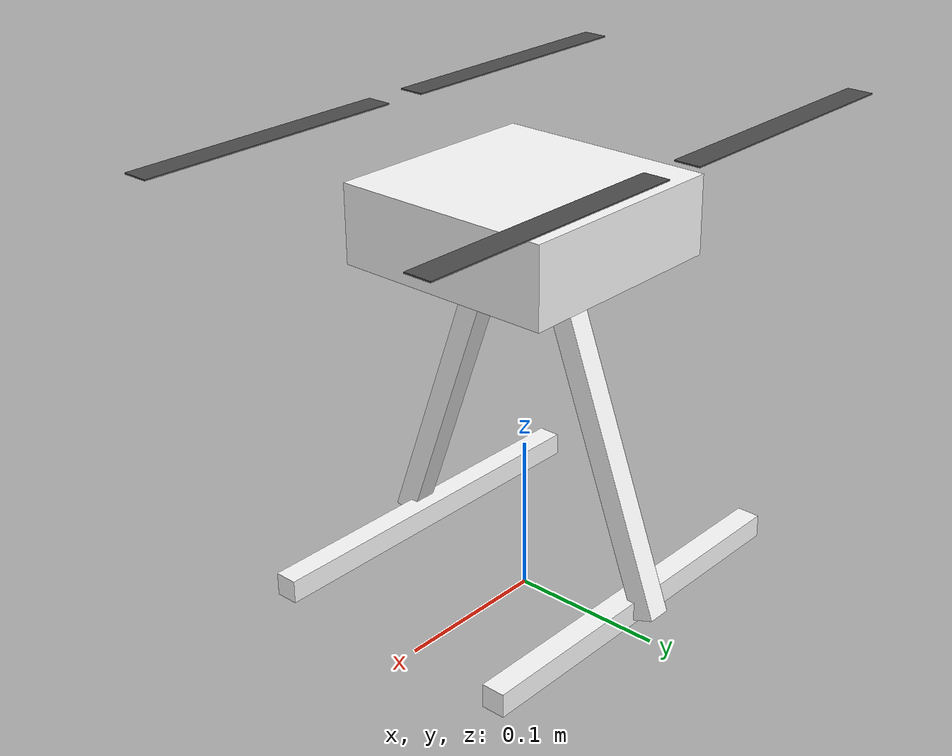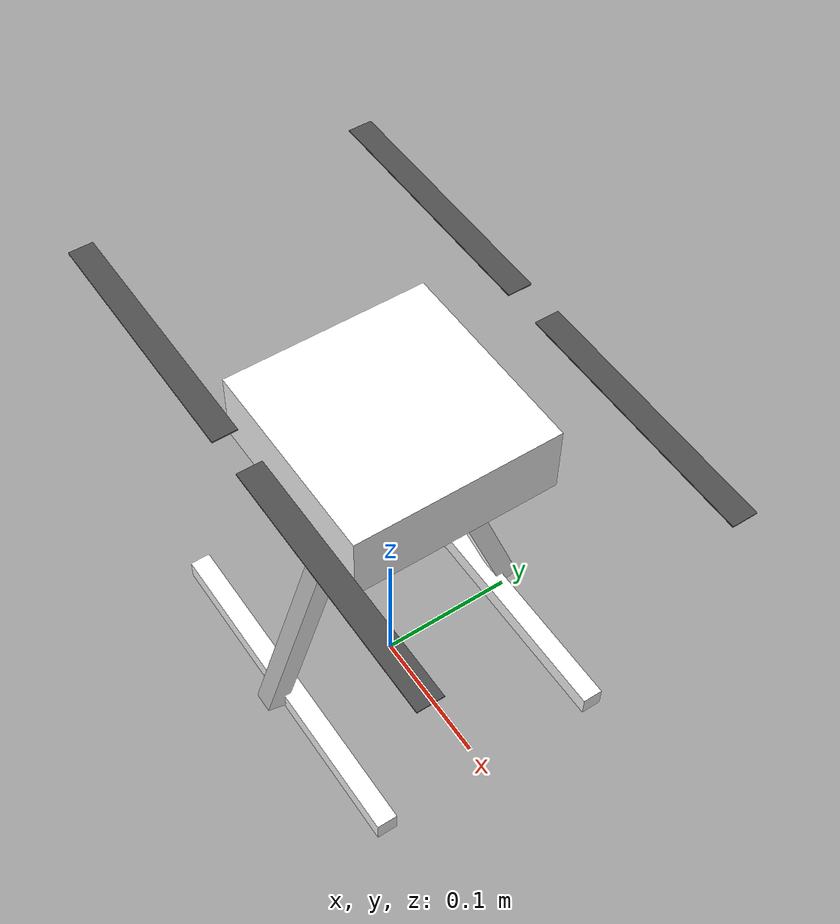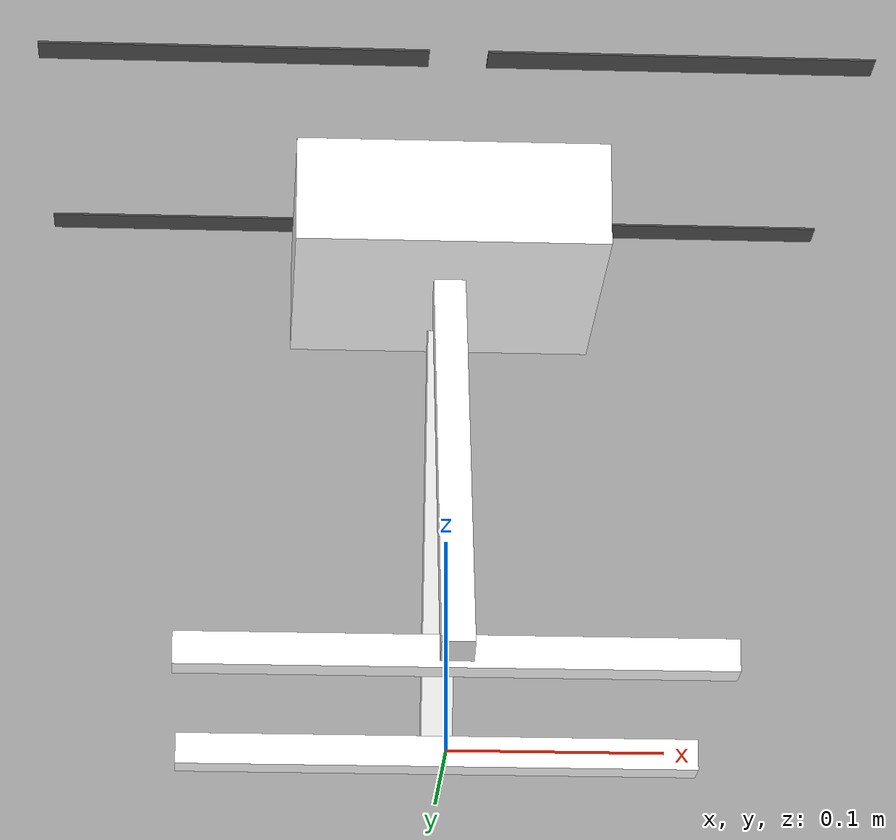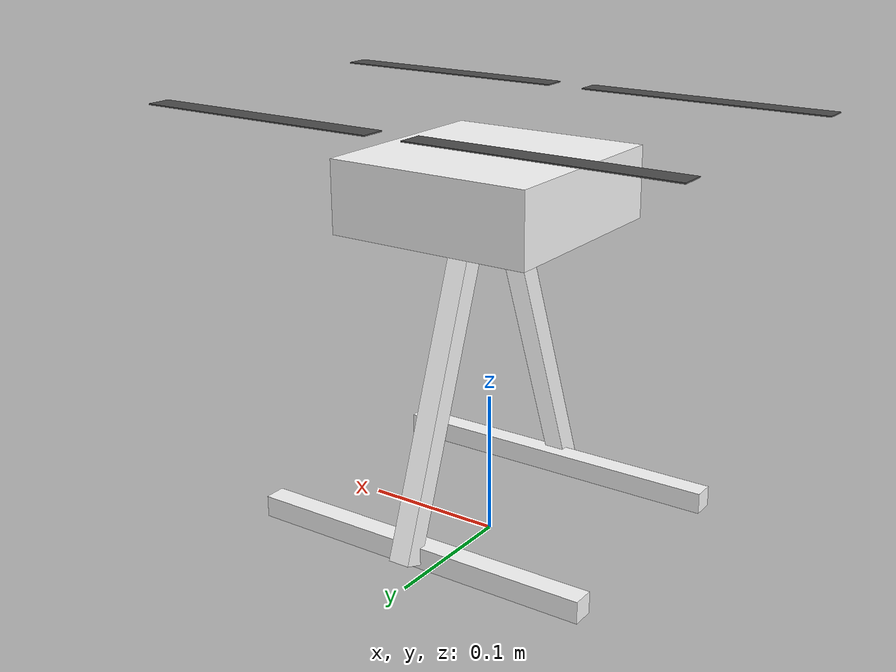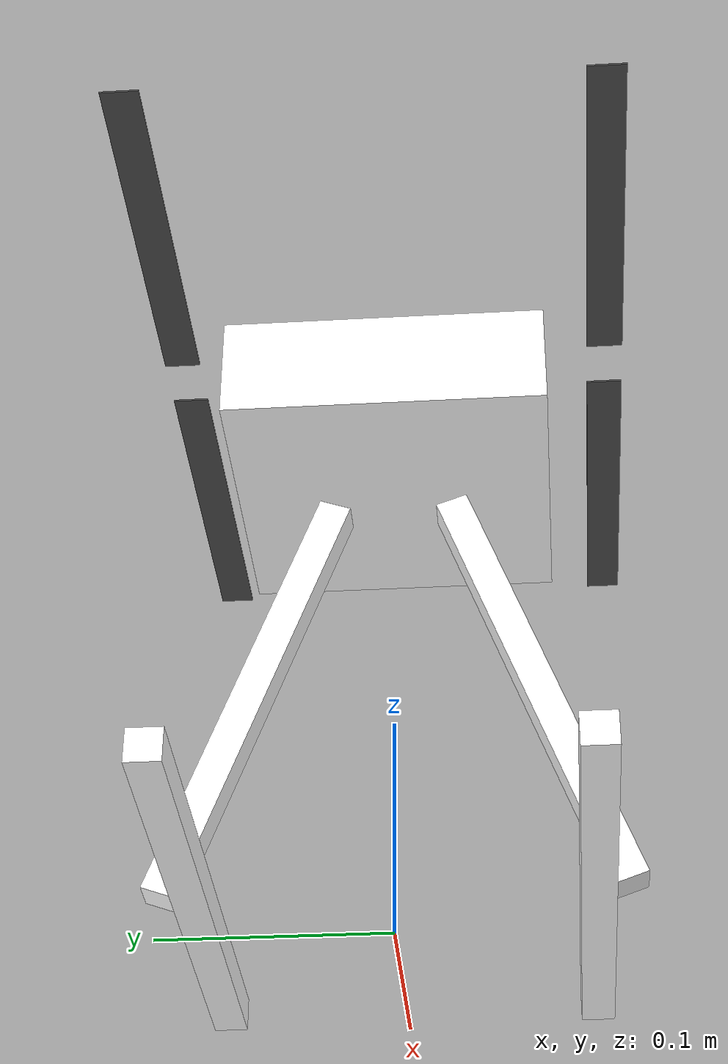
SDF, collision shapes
<?xml version="1.0" encoding="UTF-8"?>
<sdf version='1.9'>
  <model name='x290'>
    <include merge='true'>
      <uri>model://x290_base</uri>
    </include>
    <plugin filename="gz-sim-multicopter-motor-model-system"
      name="gz::sim::systems::MulticopterMotorModel">
      <jointName>rotor_0_joint</jointName>
      <linkName>rotor_0</linkName>
      <turningDirection>ccw</turningDirection>
      <timeConstantUp>0.0125</timeConstantUp>
      <timeConstantDown>0.025</timeConstantDown>
      <maxRotVelocity>1000.0</maxRotVelocity>
      <motorConstant>8.54858e-06</motorConstant>
      <momentConstant>0.016</momentConstant>
      <commandSubTopic>command/motor_speed</commandSubTopic>
      <motorNumber>0</motorNumber>
      <rotorDragCoefficient>8.06428e-05</rotorDragCoefficient>
      <rollingMomentCoefficient>1e-06</rollingMomentCoefficient>
      <rotorVelocitySlowdownSim>10</rotorVelocitySlowdownSim>
      <motorType>velocity</motorType>
    </plugin>
    <plugin filename="gz-sim-multicopter-motor-model-system"
      name="gz::sim::systems::MulticopterMotorModel">
      <jointName>rotor_1_joint</jointName>
      <linkName>rotor_1</linkName>
      <turningDirection>ccw</turningDirection>
      <timeConstantUp>0.0125</timeConstantUp>
      <timeConstantDown>0.025</timeConstantDown>
      <maxRotVelocity>1000.0</maxRotVelocity>
      <motorConstant>8.54858e-06</motorConstant>
      <momentConstant>0.016</momentConstant>
      <commandSubTopic>command/motor_speed</commandSubTopic>
      <motorNumber>1</motorNumber>
      <rotorDragCoefficient>8.06428e-05</rotorDragCoefficient>
      <rollingMomentCoefficient>1e-06</rollingMomentCoefficient>
      <rotorVelocitySlowdownSim>10</rotorVelocitySlowdownSim>
      <motorType>velocity</motorType>
    </plugin>
    <plugin filename="gz-sim-multicopter-motor-model-system"
      name="gz::sim::systems::MulticopterMotorModel">
      <jointName>rotor_2_joint</jointName>
      <linkName>rotor_2</linkName>
      <turningDirection>cw</turningDirection>
      <timeConstantUp>0.0125</timeConstantUp>
      <timeConstantDown>0.025</timeConstantDown>
      <maxRotVelocity>1000.0</maxRotVelocity>
      <motorConstant>8.54858e-06</motorConstant>
      <momentConstant>0.016</momentConstant>
      <commandSubTopic>command/motor_speed</commandSubTopic>
      <motorNumber>2</motorNumber>
      <rotorDragCoefficient>8.06428e-05</rotorDragCoefficient>
      <rollingMomentCoefficient>1e-06</rollingMomentCoefficient>
      <rotorVelocitySlowdownSim>10</rotorVelocitySlowdownSim>
      <motorType>velocity</motorType>
    </plugin>
    <plugin filename="gz-sim-multicopter-motor-model-system"
      name="gz::sim::systems::MulticopterMotorModel">
      <jointName>rotor_3_joint</jointName>
      <linkName>rotor_3</linkName>
      <turningDirection>cw</turningDirection>
      <timeConstantUp>0.0125</timeConstantUp>
      <timeConstantDown>0.025</timeConstantDown>
      <maxRotVelocity>1000.0</maxRotVelocity>
      <motorConstant>8.54858e-06</motorConstant>
      <momentConstant>0.016</momentConstant>
      <commandSubTopic>command/motor_speed</commandSubTopic>
      <motorNumber>3</motorNumber>
      <rotorDragCoefficient>8.06428e-05</rotorDragCoefficient>
      <rollingMomentCoefficient>1e-06</rollingMomentCoefficient>
      <rotorVelocitySlowdownSim>10</rotorVelocitySlowdownSim>
      <motorType>velocity</motorType>
    </plugin>
  </model>
</sdf>

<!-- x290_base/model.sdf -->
<sdf version='1.9'>
  <model name='x290_base'>
    <pose>0 0 .24 0 0 0</pose>
    <self_collide>false</self_collide>
    <static>false</static>
    <link name="base_link">
      <inertial>
        <mass>2.0</mass>
        <inertia>
          <ixx>0.02166666666666667</ixx>
          <ixy>0</ixy>
          <ixz>0</ixz>
          <iyy>0.02166666666666667</iyy>
          <iyz>0</iyz>
          <izz>0.04000000000000001</izz>
        </inertia>
      </inertial>
      <gravity>true</gravity>
      <velocity_decay />
      <visual name="base_link_visual">
        <pose>0 0 .025 0 0 3.141592654</pose>
        <geometry>
          <mesh>
            <scale>0.58 0.58 0.58</scale>
            <uri>model://x500_base/meshes/NXP-HGD-CF.dae</uri>
          </mesh>
        </geometry>
      </visual>
      <visual name="5010_motor_base_0">
        <pose>0.1025 0.1025 .032 0 0 -.45</pose>
        <geometry>
          <mesh>
            <scale>1 1 1</scale>
            <uri>model://x500_base/meshes/5010Base.dae</uri>
          </mesh>
        </geometry>
      </visual>
      <visual name="5010_motor_base_1">
        <pose>-0.1025 0.1025 .032 0 0 -.45</pose>
        <geometry>
          <mesh>
            <scale>1 1 1</scale>
            <uri>model://x500_base/meshes/5010Base.dae</uri>
          </mesh>
        </geometry>
      </visual>
      <visual name="5010_motor_base_2">
        <pose>0.1025 -0.1025 .032 0 0 -.45</pose>
        <geometry>
          <mesh>
            <scale>1 1 1</scale>
            <uri>model://x500_base/meshes/5010Base.dae</uri>
          </mesh>
        </geometry>
      </visual>
      <visual name="5010_motor_base_3">
        <pose>-0.1025 -0.1025 .032 0 0 -.45</pose>
        <geometry>
          <mesh>
            <scale>1 1 1</scale>
            <uri>model://x500_base/meshes/5010Base.dae</uri>
          </mesh>
        </geometry>
      </visual>
      <visual name="NXP_FMUK66_FRONT">
        <pose>0.047 .001 .043 1 0 1.57</pose>
        <cast_shadows>false</cast_shadows>
        <geometry>
          <plane>
            <normal>0 0 1</normal>
            <size>.013 .007</size>
          </plane>
        </geometry>
        <material>
          <diffuse>1.0 1.0 1.0</diffuse>
          <specular>1.0 1.0 1.0</specular>
          <pbr>
            <metal>
              <albedo_map>model://x500_base/materials/textures/nxp.png</albedo_map>
            </metal>
          </pbr>
        </material>
      </visual>
      <visual name="NXP_FMUK66_TOP">
        <pose>-0.023 0 .0515 0 0 -1.57</pose>
        <cast_shadows>false</cast_shadows>
        <geometry>
          <plane>
            <normal>0 0 1</normal>
            <size>.013 .007</size>
          </plane>
        </geometry>
        <material>
          <diffuse>1.0 1.0 1.0</diffuse>
          <specular>1.0 1.0 1.0</specular>
          <pbr>
            <metal>
              <albedo_map>model://x500_base/materials/textures/nxp.png</albedo_map>
            </metal>
          </pbr>
        </material>
      </visual>
      <visual name="RDDRONE_FMUK66_TOP">
        <pose>-.03 0 .0515 0 0 -1.57</pose>
        <cast_shadows>false</cast_shadows>
        <geometry>
          <plane>
            <normal>0 0 1</normal>
            <size>.032 .0034</size>
          </plane>
        </geometry>
        <material>
          <diffuse>1.0 1.0 1.0</diffuse>
          <specular>1.0 1.0 1.0</specular>
          <pbr>
            <metal>
              <albedo_map>model://x500_base/materials/textures/rd.png</albedo_map>
            </metal>
          </pbr>
        </material>
      </visual>
      <collision name="base_link_collision_0">
        <pose>0 0 .007 0 0 0</pose>
        <geometry>
          <box>
            <size>0.1456 0.1456 0.05</size>
          </box>
        </geometry>
        <surface>
          <contact>
            <ode>
              <min_depth>0.001</min_depth>
              <max_vel>0</max_vel>
            </ode>
          </contact>
          <friction>
            <ode />
          </friction>
        </surface>
      </collision>
      <collision name="base_link_collision_1">
        <pose>0 -0.063 -.123 -0.35 0 0</pose>
        <geometry>
          <box>
            <size>0.015 0.015 0.21</size>
          </box>
        </geometry>
        <surface>
          <contact>
            <ode>
              <min_depth>0.001</min_depth>
              <max_vel>0</max_vel>
            </ode>
          </contact>
          <friction>
            <ode />
          </friction>
        </surface>
      </collision>
      <collision name="base_link_collision_2">
        <pose>0 0.063 -.123 0.35 0 0</pose>
        <geometry>
          <box>
            <size>0.015 0.015 0.21</size>
          </box>
        </geometry>
        <surface>
          <contact>
            <ode>
              <min_depth>0.001</min_depth>
              <max_vel>0</max_vel>
            </ode>
          </contact>
          <friction>
            <ode />
          </friction>
        </surface>
      </collision>
      <collision name="base_link_collision_3">
        <pose>0 -0.085 -.2195 0 0 0</pose>
        <geometry>
          <box>
            <size>0.25 0.015 0.015</size>
          </box>
        </geometry>
        <surface>
          <contact>
            <ode>
              <min_depth>0.001</min_depth>
              <max_vel>0</max_vel>
            </ode>
          </contact>
          <friction>
            <ode />
          </friction>
        </surface>
      </collision>
      <collision name="base_link_collision_4">
        <pose>0 0.085 -.2195 0 0 0</pose>
        <geometry>
          <box>
            <size>0.25 0.015 0.015</size>
          </box>
        </geometry>
        <surface>
          <contact>
            <ode>
              <min_depth>0.001</min_depth>
              <max_vel>0</max_vel>
            </ode>
          </contact>
          <friction>
            <ode />
          </friction>
        </surface>
      </collision>
      <sensor name="air_pressure_sensor" type="air_pressure">
        <gz_frame_id>base_link</gz_frame_id>
        <always_on>1</always_on>
        <update_rate>50</update_rate>
        <air_pressure>
          <pressure>
            <noise type="gaussian">
              <mean>0</mean>
              <stddev>3</stddev>
            </noise>
          </pressure>
        </air_pressure>
      </sensor>
      <sensor name="magnetometer_sensor" type="magnetometer">
        <gz_frame_id>base_link</gz_frame_id>
        <always_on>1</always_on>
        <update_rate>100</update_rate>
        <magnetometer>
          <x>
            <noise type="gaussian">
              <stddev>0.0001</stddev>
            </noise>
          </x>
          <y>
            <noise type="gaussian">
              <stddev>0.0001</stddev>
            </noise>
          </y>
          <z>
            <noise type="gaussian">
              <stddev>0.0001</stddev>
            </noise>
          </z>
        </magnetometer>
      </sensor>
      <sensor name="imu_sensor" type="imu">
        <gz_frame_id>base_link</gz_frame_id>
        <always_on>1</always_on>
        <update_rate>250</update_rate>
        <imu>
          <angular_velocity>
            <x>
              <noise type="gaussian">
                <mean>0.0</mean>
                <stddev>0.0008726646</stddev>
              </noise>
            </x>
            <y>
              <noise type="gaussian">
                <mean>0.0</mean>
                <stddev>0.0008726646</stddev>
              </noise>
            </y>
            <z>
              <noise type="gaussian">
                <mean>0.0</mean>
                <stddev>0.0008726646</stddev>
              </noise>
            </z>
          </angular_velocity>
          <linear_acceleration>
            <x>
              <noise type="gaussian">
                <mean>0.0</mean>
                <stddev>0.00637</stddev>
              </noise>
            </x>
            <y>
              <noise type="gaussian">
                <mean>0.0</mean>
                <stddev>0.00637</stddev>
              </noise>
            </y>
            <z>
              <noise type="gaussian">
                <mean>0.0</mean>
                <stddev>0.00686</stddev>
              </noise>
            </z>
          </linear_acceleration>
        </imu>
      </sensor>
      <sensor name="navsat_sensor" type="navsat">
        <gz_frame_id>base_link</gz_frame_id>
        <always_on>1</always_on>
        <update_rate>30</update_rate>
      </sensor>
    </link>

    <link name="rotor_0">
      <gravity>true</gravity>
      <self_collide>false</self_collide>
      <velocity_decay />
      <pose>0.1025 -0.1025 0.06 0 0 0</pose>
      <inertial>
        <mass>0.006076923076923075</mass>
        <inertia>
          <ixx>3.8464910483993325e-07</ixx>
          <iyy>2.6115851691700804e-05</iyy>
          <izz>2.649858234714004e-05</izz>
        </inertia>
      </inertial>
      <visual name="rotor_0_visual">
        <pose>-0.022 -0.089 -0.016 0 0 0</pose>
        <geometry>
          <mesh>
            <scale>0.455738461538461 0.455738461538461 0.455738461538461</scale>
            <uri>model://x500_base/meshes/1345_prop_ccw.stl</uri>
          </mesh>
        </geometry>
        <material>
          <script>
            <name>Gazebo/DarkGrey</name>
            <uri>file://media/materials/scripts/gazebo.material</uri>
          </script>
        </material>
      </visual>
      <visual name="rotor_0_visual_motor_bell">
        <pose>0 0 -.032 0 0 0</pose>
        <geometry>
          <mesh>
            <scale>1 1 1</scale>
            <uri>model://x500_base/meshes/5010Bell.dae</uri>
          </mesh>
        </geometry>
      </visual>
      <collision name="rotor_0_collision">
        <pose>0 0 0 0 0 0 </pose>
        <geometry>
          <box>
            <size>0.178 0.016923076923076923 0.0008461538461538462</size>
          </box>
        </geometry>
        <surface>
          <contact>
            <ode>
              <min_depth>0.001</min_depth>
              <max_vel>0</max_vel>
            </ode>
          </contact>
          <friction>
            <ode />
          </friction>
        </surface>
      </collision>
    </link>
    <joint name="rotor_0_joint" type="revolute">
      <parent>base_link</parent>
      <child>rotor_0</child>
      <axis>
        <xyz>0 0 1</xyz>
        <limit>
          <lower>-1e+16</lower>
          <upper>1e+16</upper>
        </limit>
        <dynamics>
          <spring_reference>0</spring_reference>
          <spring_stiffness>0</spring_stiffness>
        </dynamics>
      </axis>
    </joint>

    <link name="rotor_1">
      <gravity>true</gravity>
      <self_collide>false</self_collide>
      <velocity_decay />
      <pose>-0.1025 0.1025 0.06 0 0 0</pose>
      <inertial>
        <mass>0.006076923076923075</mass>
        <inertia>
          <ixx>3.8464910483993325e-07</ixx>
          <iyy>2.6115851691700804e-05</iyy>
          <izz>2.649858234714004e-05</izz>
        </inertia>
      </inertial>
      <visual name="rotor_1_visual">
        <pose>-0.022 -0.089 -0.016 0 0 0</pose>
        <geometry>
          <mesh>
            <scale>0.455738461538461 0.455738461538461 0.455738461538461</scale>
            <uri>model://x500_base/meshes/1345_prop_ccw.stl</uri>
          </mesh>
        </geometry>
        <material>
          <script>
            <name>Gazebo/DarkGrey</name>
            <uri>file://media/materials/scripts/gazebo.material</uri>
          </script>
        </material>
      </visual>
      <visual name="rotor_1_visual_motor_top">
        <pose>0 0 -.032 0 0 0</pose>
        <geometry>
          <mesh>
            <scale>1 1 1</scale>
            <uri>model://x500_base/meshes/5010Bell.dae</uri>
          </mesh>
        </geometry>
      </visual>
      <collision name="rotor_1_collision">
        <pose>0 0 0 0 0 0 </pose>
        <geometry>
          <box>
            <size>0.178307692307692 0.016923076923076923 0.0008461538461538462</size>
          </box>
        </geometry>
        <surface>
          <contact>
            <ode>
              <min_depth>0.001</min_depth>
              <max_vel>0</max_vel>
            </ode>
          </contact>
          <friction>
            <ode />
          </friction>
        </surface>
      </collision>
    </link>
    <joint name="rotor_1_joint" type="revolute">
      <parent>base_link</parent>
      <child>rotor_1</child>
      <axis>
        <xyz>0 0 1</xyz>
        <limit>
          <lower>-1e+16</lower>
          <upper>1e+16</upper>
        </limit>
        <dynamics>
          <spring_reference>0</spring_reference>
          <spring_stiffness>0</spring_stiffness>
        </dynamics>
      </axis>
    </joint>

    <link name="rotor_2">
      <gravity>true</gravity>
      <self_collide>false</self_collide>
      <velocity_decay />
      <pose>0.1025 0.1025 0.06 0 0 0</pose>
      <inertial>
        <mass>0.006076923076923075</mass>
        <inertia>
          <ixx>3.8464910483993325e-07</ixx>
          <iyy>2.6115851691700804e-05</iyy>
          <izz>2.649858234714004e-05</izz>
        </inertia>
      </inertial>
      <visual name="rotor_2_visual">
        <pose>-0.022 -0.089 -0.016 0 0 0</pose>
        <geometry>
          <mesh>
            <scale>0.455738461538461 0.455738461538461 0.455738461538461</scale>
            <uri>model://x500_base/meshes/1345_prop_cw.stl</uri>
          </mesh>
        </geometry>
        <material>
          <script>
            <name>Gazebo/DarkGrey</name>
            <uri>file://media/materials/scripts/gazebo.material</uri>
          </script>
        </material>
      </visual>
      <visual name="rotor_2_visual_motor_top">
        <pose>0 0 -.032 0 0 0</pose>
        <geometry>
          <mesh>
            <scale>1 1 1</scale>
            <uri>model://x500_base/meshes/5010Bell.dae</uri>
          </mesh>
        </geometry>
      </visual>
      <collision name="rotor_2_collision">
        <pose>0 0 0 0 0 0 </pose>
        <geometry>
          <box>
            <size>0.178307692307692 0.016923076923076923 0.0008461538461538462</size>
          </box>
        </geometry>
        <surface>
          <contact>
            <ode>
              <min_depth>0.001</min_depth>
              <max_vel>0</max_vel>
            </ode>
          </contact>
          <friction>
            <ode />
          </friction>
        </surface>
      </collision>
    </link>
    <joint name="rotor_2_joint" type="revolute">
      <parent>base_link</parent>
      <child>rotor_2</child>
      <axis>
        <xyz>0 0 1</xyz>
        <limit>
          <lower>-1e+16</lower>
          <upper>1e+16</upper>
        </limit>
        <dynamics>
          <spring_reference>0</spring_reference>
          <spring_stiffness>0</spring_stiffness>
        </dynamics>
      </axis>
    </joint>

    <link name="rotor_3">
      <gravity>true</gravity>
      <self_collide>false</self_collide>
      <velocity_decay />
      <pose>-0.1025 -0.1025 0.06 0 0 0</pose>
      <inertial>
        <mass>0.006076923076923075</mass>
        <inertia>
          <ixx>3.8464910483993325e-07</ixx>
          <iyy>2.6115851691700804e-05</iyy>
          <izz>2.649858234714004e-05</izz>
        </inertia>
      </inertial>
      <visual name="rotor_3_visual">
        <pose>-0.022 -0.089 -0.016 0 0 0</pose>
        <geometry>
          <mesh>
            <scale>0.455738461538461 0.455738461538461 0.455738461538461</scale>
            <uri>model://x500_base/meshes/1345_prop_cw.stl</uri>
          </mesh>
        </geometry>
        <material>
          <script>
            <name>Gazebo/DarkGrey</name>
            <uri>file://media/materials/scripts/gazebo.material</uri>
          </script>
        </material>
      </visual>
      <visual name="rotor_3_visual_motor_top">
        <pose>0 0 -.032 0 0 0</pose>
        <geometry>
          <mesh>
            <scale>1 1 1</scale>
            <uri>model://x500_base/meshes/5010Bell.dae</uri>
          </mesh>
        </geometry>
      </visual>
      <collision name="rotor_3_collision">
        <pose>0 0 0 0 0 0 </pose>
        <geometry>
          <box>
            <size>0.178307692307692 0.016923076923076923 0.0008461538461538462</size>
          </box>
        </geometry>
        <surface>
          <contact>
            <ode>
              <min_depth>0.001</min_depth>
              <max_vel>0</max_vel>
            </ode>
          </contact>
          <friction>
            <ode />
          </friction>
        </surface>
      </collision>
    </link>
    <joint name="rotor_3_joint" type="revolute">
      <parent>base_link</parent>
      <child>rotor_3</child>
      <axis>
        <xyz>0 0 1</xyz>
        <limit>
          <lower>-1e+16</lower>
          <upper>1e+16</upper>
        </limit>
        <dynamics>
          <spring_reference>0</spring_reference>
          <spring_stiffness>0</spring_stiffness>
        </dynamics>
      </axis>
    </joint>
  </model>
</sdf>
